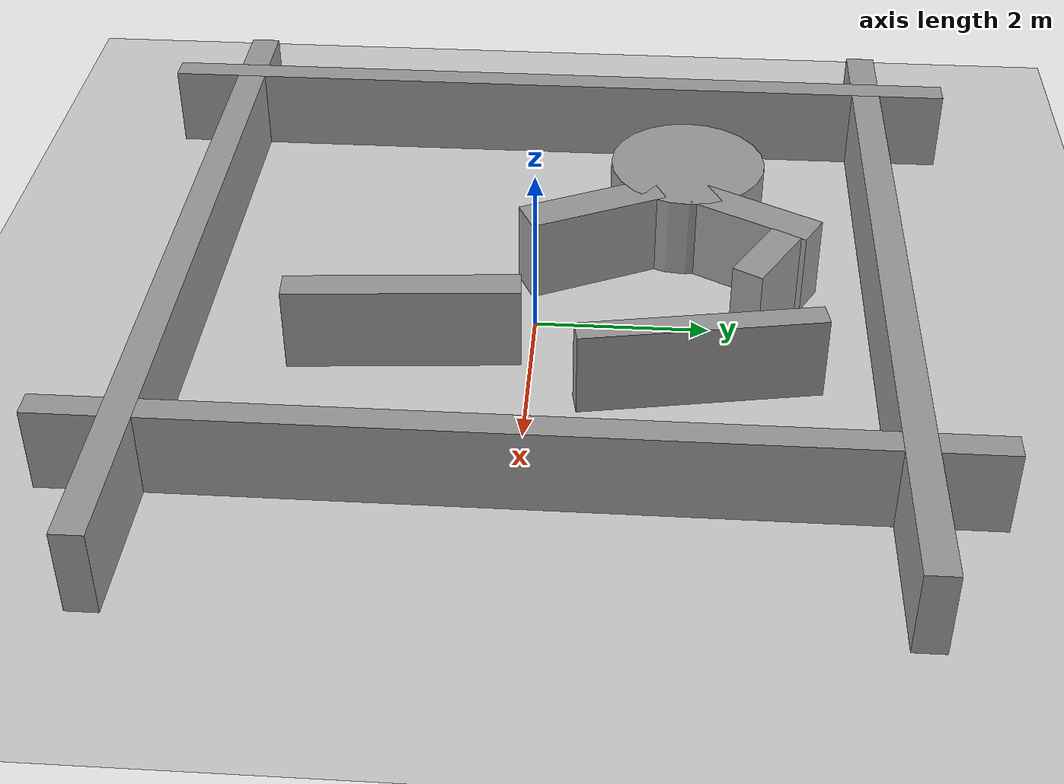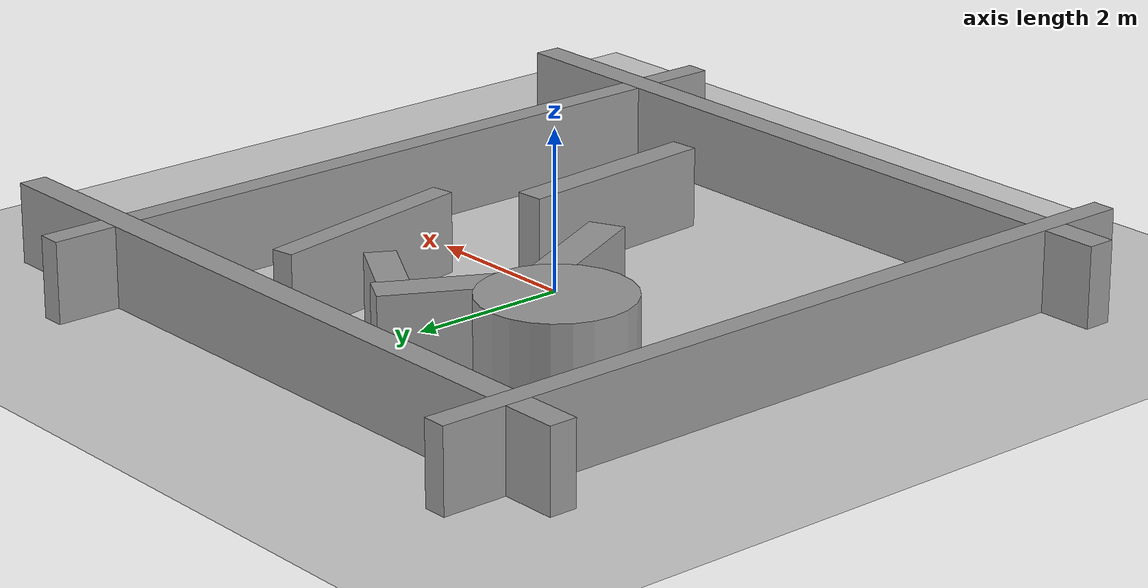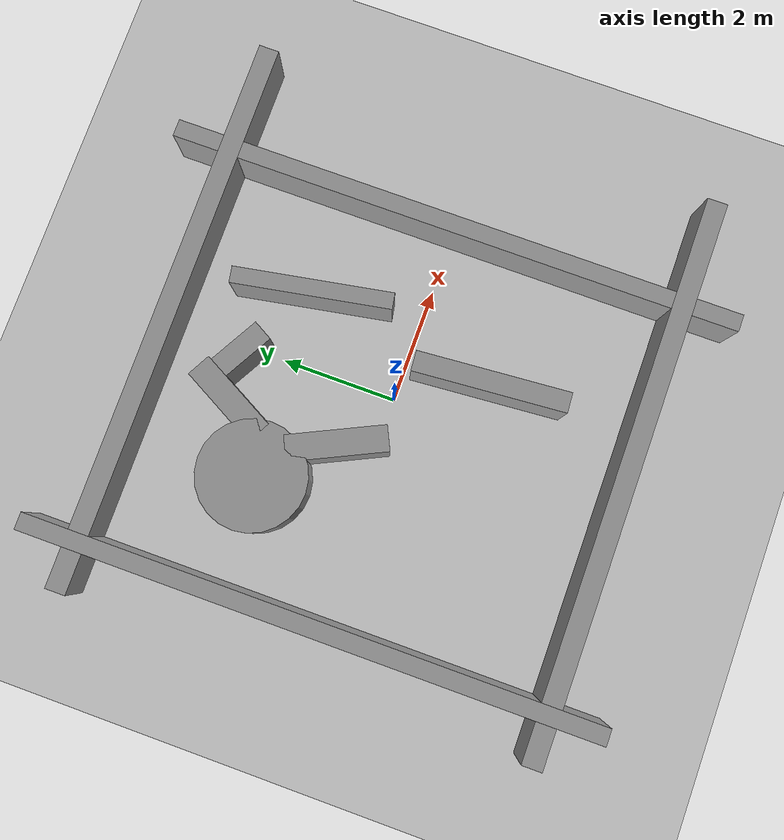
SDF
<sdf version="1.6">
 <world name="default">
  <light name="sun" type="directional">
   <pose>0 0 10 0 -0 0</pose>
   <diffuse>0.8 0.8 0.8 1</diffuse>
   <specular>0.2 0.2 0.2 1</specular>
   <attenuation>
    <range>1000</range>
    <constant>0.9</constant>
    <linear>0.01</linear>
    <quadratic>0.001</quadratic>
   </attenuation>
   <direction>-0.5 0.1 -0.9</direction>
  </light>
  <model name="ground_plane">
   <pose>0 -3 0 0 -0 0</pose>
   <static>1</static>
   <link name="link">
    <collision name="collision">
     <geometry><plane><normal>0 0 1</normal><size>100 100</size></plane></geometry>
     <surface>
      <contact><collide_bitmask>65535</collide_bitmask></contact>
      <friction><ode><mu>100</mu><mu2>50</mu2></ode></friction>
     </surface>
    </collision>
    <visual name="visual">
     <cast_shadows>0</cast_shadows>
     <geometry><plane><normal>0 0 1</normal><size>100 100</size></plane></geometry>
     <material>
      <script><uri>file://media/materials/scripts/gazebo.material</uri><name>Gazebo/Grey</name></script>
     </material>
    </visual>
   </link>
  </model>
  <gravity>0 0 -9.8</gravity>
  <magnetic_field>6e-06 2.3e-05 -4.2e-05</magnetic_field>
  <atmosphere type="adiabatic"/>
  <physics name="default_physics" default="0" type="ode">
   <max_step_size>0.001</max_step_size>
   <real_time_factor>1</real_time_factor>
   <real_time_update_rate>1000</real_time_update_rate>
  </physics>
  <scene><ambient>0.4 0.4 0.4 1</ambient><background>0.7 0.7 0.7 1</background><shadows>1</shadows></scene>
  <audio><device>default</device></audio>
  <spherical_coordinates>
   <surface_model>EARTH_WGS84</surface_model>
   <latitude_deg>0</latitude_deg>
   <longitude_deg>0</longitude_deg>
   <elevation>0</elevation>
   <heading_deg>0</heading_deg>
  </spherical_coordinates>
  <model name="unit_box_1_clone">
   <static>1</static>
   <pose>1e-06 -4 0.500001 -2e-06 -2e-06 -2e-05</pose>
   <link name="link">
    <inertial>
     <mass>1</mass>
     <inertia>
      <ixx>0.166667</ixx>
      <ixy>0</ixy>
      <ixz>0</ixz>
      <iyy>0.166667</iyy>
      <iyz>0</iyz>
      <izz>0.166667</izz>
     </inertia>
    </inertial>
    <collision name="collision"><geometry><box><size>9.70268 0.349789 1</size></box></geometry></collision>
    <visual name="visual">
     <geometry><box><size>9.70268 0.349789 1</size></box></geometry>
     <material>
      <script><name>Gazebo/Grey</name><uri>file://media/materials/scripts/gazebo.material</uri></script>
     </material>
    </visual>
   </link>
  </model>
  <model name="unit_box_0_clone">
   <static>1</static>
   <pose>-4 0 0.5 0 -0 0</pose>
   <link name="link">
    <inertial>
     <mass>1</mass>
     <inertia>
      <ixx>0.166667</ixx>
      <ixy>0</ixy>
      <ixz>0</ixz>
      <iyy>0.166667</iyy>
      <iyz>0</iyz>
      <izz>0.166667</izz>
     </inertia>
    </inertial>
    <collision name="collision"><geometry><box><size>0.297352 9.97673 1</size></box></geometry></collision>
    <visual name="visual">
     <geometry><box><size>0.297352 9.97673 1</size></box></geometry>
     <material>
      <script><name>Gazebo/Grey</name><uri>file://media/materials/scripts/gazebo.material</uri></script>
     </material>
    </visual>
   </link>
  </model>
  <model name="unit_box">
   <static>1</static>
   <pose>1.18022 1.87134 0.498771 -0.000556 5.7e-05 0.175922</pose>
   <link name="link">
    <inertial>
     <mass>1</mass>
     <inertia>
      <ixx>0.166667</ixx>
      <ixy>0</ixy>
      <ixz>0</ixz>
      <iyy>0.166667</iyy>
      <iyz>0</iyz>
      <izz>0.166667</izz>
     </inertia>
    </inertial>
    <collision name="collision"><geometry><box><size>0.284344 2.73967 1</size></box></geometry></collision>
    <visual name="visual">
     <geometry><box><size>0.284344 2.73967 1</size></box></geometry>
     <material>
      <script><name>Gazebo/Grey</name><uri>file://media/materials/scripts/gazebo.material</uri></script>
     </material>
    </visual>
   </link>
  </model>
  <model name="unit_box_2">
   <static>1</static>
   <pose>0.699491 -1.4341 0.499995 -1e-05 -0 0.07563</pose>
   <link name="link">
    <inertial>
     <mass>1</mass>
     <inertia>
      <ixx>0.166667</ixx>
      <ixy>0</ixy>
      <ixz>0</ixz>
      <iyy>0.166667</iyy>
      <iyz>0</iyz>
      <izz>0.166667</izz>
     </inertia>
    </inertial>
    <collision name="collision"><geometry><box><size>0.351706 2.64245 1</size></box></geometry></collision>
    <visual name="visual">
     <geometry><box><size>0.351706 2.64245 1</size></box></geometry>
     <material>
      <script><name>Gazebo/Grey</name><uri>file://media/materials/scripts/gazebo.material</uri></script>
     </material>
    </visual>
   </link>
  </model>
  <model name="unit_cylinder">
   <static>1</static>
   <pose>-2.05695 1.71552 0.5 0 -0 0.016561</pose>
   <link name="link">
    <inertial>
     <mass>1</mass>
     <inertia><ixx>0.145833</ixx><ixy>0</ixy><ixz>0</ixz><iyy>0.145833</iyy><iyz>0</iyz><izz>0.125</izz></inertia>
    </inertial>
    <collision name="collision">
     <geometry><cylinder><radius>0.926594</radius><length>1</length></cylinder></geometry>
    </collision>
    <visual name="visual">
     <geometry><cylinder><radius>0.926594</radius><length>1</length></cylinder></geometry>
     <material>
      <script><name>Gazebo/Grey</name><uri>file://media/materials/scripts/gazebo.material</uri></script>
     </material>
    </visual>
   </link>
  </model>
  <model name="unit_box_3">
   <static>1</static>
   <pose>-0.17987 2.61137 0.499999 2e-06 0 1.05795</pose>
   <link name="link">
    <inertial>
     <mass>1</mass>
     <inertia>
      <ixx>0.166667</ixx>
      <ixy>0</ixy>
      <ixz>0</ixz>
      <iyy>0.166667</iyy>
      <iyz>0</iyz>
      <izz>0.166667</izz>
     </inertia>
    </inertial>
    <collision name="collision"><geometry><box><size>0.374656 0.952765 1</size></box></geometry></collision>
    <visual name="visual">
     <geometry><box><size>0.374656 0.952765 1</size></box></geometry>
     <material>
      <script><name>Gazebo/Grey</name><uri>file://media/materials/scripts/gazebo.material</uri></script>
     </material>
    </visual>
   </link>
  </model>
  <model name="unit_box_4">
   <static>1</static>
   <pose>-1.01774 2.50786 0.5 0 0 -0.497212</pose>
   <link name="link">
    <inertial>
     <mass>1</mass>
     <inertia>
      <ixx>0.166667</ixx>
      <ixy>0</ixy>
      <ixz>0</ixz>
      <iyy>0.166667</iyy>
      <iyz>0</iyz>
      <izz>0.166667</izz>
     </inertia>
    </inertial>
    <collision name="collision"><geometry><box><size>0.43502 1.49814 1</size></box></geometry></collision>
    <visual name="visual">
     <geometry><box><size>0.43502 1.49814 1</size></box></geometry>
     <material>
      <script><name>Gazebo/Grey</name><uri>file://media/materials/scripts/gazebo.material</uri></script>
     </material>
    </visual>
   </link>
  </model>
  <model name="unit_box_5">
   <static>1</static>
   <pose>-1.10132 0.600105 0.5 0 -0 0.443497</pose>
   <link name="link">
    <inertial>
     <mass>1</mass>
     <inertia>
      <ixx>0.166667</ixx>
      <ixy>0</ixy>
      <ixz>0</ixz>
      <iyy>0.166667</iyy>
      <iyz>0</iyz>
      <izz>0.166667</izz>
     </inertia>
    </inertial>
    <collision name="collision"><geometry><box><size>0.443966 1.69364 1</size></box></geometry></collision>
    <visual name="visual">
     <geometry><box><size>0.443966 1.69364 1</size></box></geometry>
     <material>
      <script><name>Gazebo/Grey</name><uri>file://media/materials/scripts/gazebo.material</uri></script>
     </material>
    </visual>
   </link>
  </model>
  <model name="unit_box_0_clone_clone">
   <static>1</static>
   <pose>3 0 0.5 0 -0 0</pose>
   <link name="link">
    <inertial>
     <mass>1</mass>
     <inertia>
      <ixx>0.166667</ixx>
      <ixy>0</ixy>
      <ixz>0</ixz>
      <iyy>0.166667</iyy>
      <iyz>0</iyz>
      <izz>0.166667</izz>
     </inertia>
    </inertial>
    <collision name="collision"><geometry><box><size>0.297352 9.96333 1</size></box></geometry></collision>
    <visual name="visual">
     <geometry><box><size>0.297352 9.96333 1</size></box></geometry>
     <material>
      <script><name>Gazebo/Grey</name><uri>file://media/materials/scripts/gazebo.material</uri></script>
     </material>
    </visual>
   </link>
  </model>
  <model name="unit_box_1_clone_clone">
   <static>1</static>
   <pose>0 4 0.500001 -2e-06 -2e-06 -2e-05</pose>
   <link name="link">
    <inertial>
     <mass>1</mass>
     <inertia>
      <ixx>0.166667</ixx>
      <ixy>0</ixy>
      <ixz>0</ixz>
      <iyy>0.166667</iyy>
      <iyz>0</iyz>
      <izz>0.166667</izz>
     </inertia>
    </inertial>
    <collision name="collision"><geometry><box><size>9.69134 0.349789 1</size></box></geometry></collision>
    <visual name="visual">
     <geometry><box><size>9.69134 0.349789 1</size></box></geometry>
     <material>
      <script><name>Gazebo/Grey</name><uri>file://media/materials/scripts/gazebo.material</uri></script>
     </material>
    </visual>
   </link>
  </model>
 </world>
</sdf>
